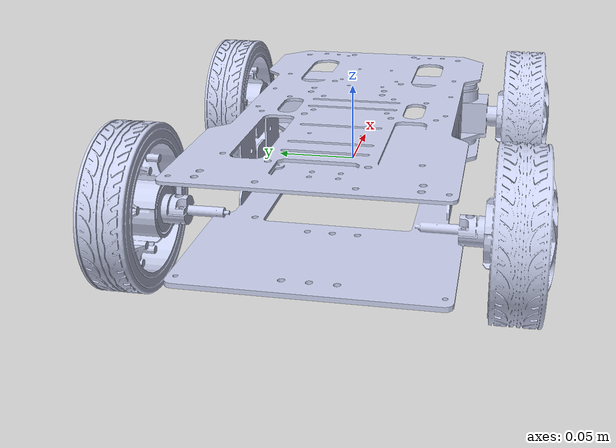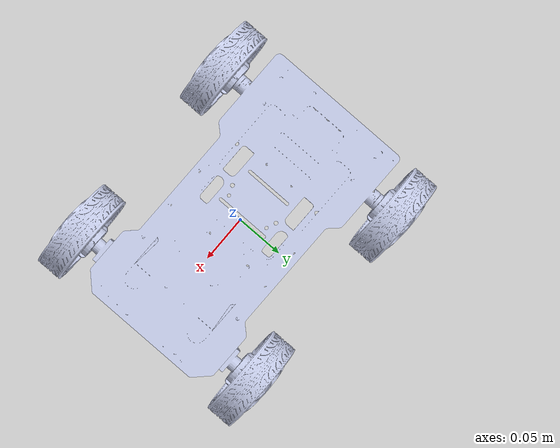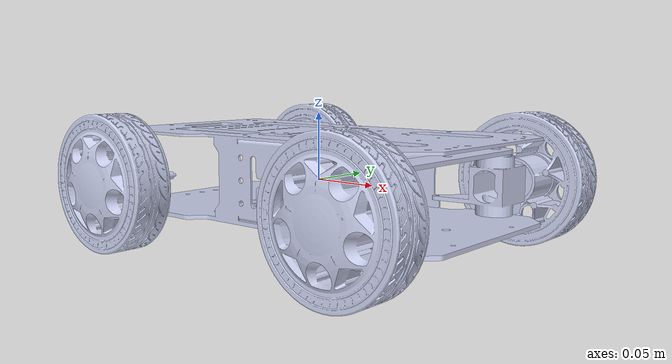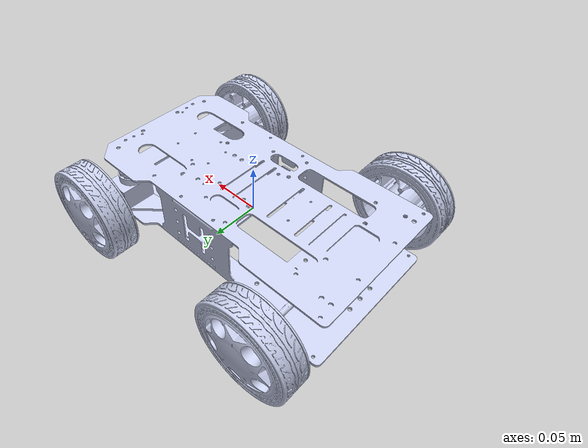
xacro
<?xml version="1.0" encoding="utf-8"?>
<robot xmlns:xacro="http://www.ros.org/wiki/xacro" name="acamana">

  <!-- Define some constants -->
  <xacro:property name="PI" value="3.1415926535897931"/>

  <!-- Include Gazebo reference plugin -->
  <xacro:include filename="$(find acamana)/urdf/acamana.gazebo"/>

  <!-- Base Link -->
  <link name="base_link">
    <inertial>
      <origin xyz="-0.000410773784337879 -4.50102945727632E-06 0.000188079948723217" rpy="0 0 0" />
      <mass value="0.224252192432071" />
      <inertia
        ixx="0.000384367775648917"
        ixy="3.76312515381557E-08"
        ixz="-3.24905280224815E-09"
        iyy="0.00152650491504501"
        iyz="7.02452171299624E-11"
        izz="0.00189778395864725" />
    </inertial>
    <visual>
      <origin xyz="0 0 0" rpy="0 0 0" />
      <geometry>
        <mesh filename="package://acamana/meshes/base_link.STL" />
      </geometry>
      <material name="light_blue">
        <color rgba="0.792156862745098 0.819607843137255 0.933333333333333 1" />
      </material>
    </visual>
    <collision>
      <origin xyz="0 0 0" rpy="0 0 0" />
      <geometry>
        <mesh filename="package://acamana/meshes/base_link.STL" />
      </geometry>
    </collision>
  </link>

  <!-- Left Steering Hinge -->
  <link name="left_steering_hinge">
    <inertial>
      <origin xyz="-0.00214055518577709 0.0114938412169271 -0.00101430442705201" rpy="0 0 0" />
      <mass value="0.019320077665136" />
      <inertia
        ixx="3.65091233921692E-06"
        ixy="-3.8359376652168E-07"
        ixz="-4.31566026293577E-07"
        iyy="4.40274174328948E-06"
        iyz="-1.57348260942121E-07"
        izz="4.35327403175562E-06" />
    </inertial>
    <visual>
      <origin xyz="0 0 0" rpy="0 0 0" />
      <geometry>
        <mesh filename="package://acamana/meshes/left_steering_hinge.STL" />
      </geometry>
      <material name="light_blue" />
    </visual>
    <collision>
      <origin xyz="0 0 0" rpy="0 0 0" />
      <geometry>
        <mesh filename="package://acamana/meshes/left_steering_hinge.STL" />
      </geometry>
    </collision>
  </link>

  <joint name="left_steering_hinge_joint" type="revolute">
    <origin xyz="0.11123 0.063711 -0.00033469" rpy="0 0 0" />
    <parent link="base_link" />
    <child link="left_steering_hinge" />
    <axis xyz="0 0 1" />
    <limit lower="-0.785" upper="0.785" effort="1999.9" velocity="348.9" />
  </joint>

  <!-- Left Front Wheel -->
  <link name="left_front_wheel">
    <inertial>
      <origin xyz="2.69864139146314E-07 0.000974501012028089 7.43504567637335E-08" rpy="0 0 0" />
      <mass value="0.124188351717402" />
      <inertia
        ixx="0.000108426219461981"
        ixy="6.16641829591181E-10"
        ixz="6.14953076918742E-09"
        iyy="0.000198988759881268"
        iyz="-1.79345986661271E-11"
        izz="0.000108425295656723" />
    </inertial>
    <visual>
      <origin xyz="0 0 0" rpy="0 0 0" />
      <geometry>
        <mesh filename="package://acamana/meshes/left_front_wheel.STL" />
      </geometry>
      <material name="light_blue" />
    </visual>
    <collision>
      <origin xyz="0 0 0" rpy="0 0 0" />
      <geometry>
        <mesh filename="package://acamana/meshes/left_front_wheel.STL" />
      </geometry>
    </collision>
  </link>

  <joint name="left_front_wheel_joint" type="continuous">
    <origin xyz="0 0.047063 0" rpy="0 0 0" />
    <parent link="left_steering_hinge" />
    <child link="left_front_wheel" />
    <axis xyz="0 -1 0" />
    <limit effort="259.9" velocity="529.9" />
    <dynamics damping="0.1" friction="0.1"/>
  </joint>

  <!-- Right Steering Hinge -->
  <link name="right_steering_hinge">
    <inertial>
      <origin xyz="-0.00214065668285346 -0.0114939743395863 -0.00101615028127726" rpy="0 0 0" />
      <mass value="0.0193185139789688" />
      <inertia
        ixx="3.6507224134391E-06"
        ixy="3.83677614862953E-07"
        ixz="-4.31474916495668E-07"
        iyy="4.40170253054901E-06"
        iyz="1.57666090581151E-07"
        izz="4.3530528940828E-06" />
    </inertial>
    <visual>
      <origin xyz="0 0 0" rpy="0 0 0" />
      <geometry>
        <mesh filename="package://acamana/meshes/right_steering_hinge.STL" />
      </geometry>
      <material name="light_blue" />
    </visual>
    <collision>
      <origin xyz="0 0 0" rpy="0 0 0" />
      <geometry>
        <mesh filename="package://acamana/meshes/right_steering_hinge.STL" />
      </geometry>
    </collision>
  </link>

  <joint name="right_steering_hinge_joint" type="revolute">
    <origin xyz="0.11123 -0.063711 -0.00033469" rpy="0 0 0" />
    <parent link="base_link" />
    <child link="right_steering_hinge" />
    <axis xyz="0 0 1" />
    <limit lower="-0.785" upper="0.785" effort="1999.9" velocity="348.9" />
  </joint>

  <!-- Right Front Wheel -->
  <link name="right_front_wheel">
    <inertial>
      <origin xyz="-1.550417727883E-06 -0.000974395825432128 2.48294778512344E-06" rpy="0 0 0" />
      <mass value="0.124186468008551" />
      <inertia
        ixx="0.0001084386658304"
        ixy="8.2849214966896E-10"
        ixz="2.08769584709537E-08"
        iyy="0.000199003281991997"
        iyz="1.53854417197541E-09"
        izz="0.00010842819433505" />
    </inertial>
    <visual>
      <origin xyz="0 0 0" rpy="0 0 0" />
      <geometry>
        <mesh filename="package://acamana/meshes/right_front_wheel.STL" />
      </geometry>
      <material name="light_blue" />
    </visual>
    <collision>
      <origin xyz="0 0 0" rpy="0 0 0" />
      <geometry>
        <mesh filename="package://acamana/meshes/right_front_wheel.STL" />
      </geometry>
    </collision>
  </link>

  <joint name="right_front_wheel_joint" type="continuous">
    <origin xyz="0 -0.047063 0" rpy="0 0 0" />
    <parent link="right_steering_hinge" />
    <child link="right_front_wheel" />
    <axis xyz="0 -1 0" />
    <limit effort="259.9" velocity="529.9" />
    <dynamics damping="0.1" friction="0.1"/>
  </joint>

  <!-- Left Rear Wheel -->
  <link name="left_rear_wheel">
    <inertial>
      <origin xyz="1.48678928679757E-06 0.000974279188147756 -2.39603507424775E-06" rpy="0 0 0" />
      <mass value="0.124185768823433" />
      <inertia
        ixx="0.000108447186828646"
        ixy="9.3356109022442E-10"
        ixz="-7.51084978124662E-09"
        iyy="0.000198999670249457"
        iyz="2.67909684507298E-10"
        izz="0.000108415507605727" />
    </inertial>
    <visual>
      <origin xyz="0 0 0" rpy="0 0 0" />
      <geometry>
        <mesh filename="package://acamana/meshes/left_rear_wheel.STL" />
      </geometry>
      <material name="light_blue" />
    </visual>
    <collision>
      <origin xyz="0 0 0" rpy="0 0 0" />
      <geometry>
        <mesh filename="package://acamana/meshes/left_rear_wheel.STL" />
      </geometry>
    </collision>
  </link>

  <joint name="left_rear_wheel_joint" type="continuous">
    <origin xyz="-0.1021 0.11077 0" rpy="0 0 0" />
    <parent link="base_link" />
    <child link="left_rear_wheel" />
    <axis xyz="0 -1 0" />
    <limit effort="259.9" velocity="529.9" />
    <dynamics damping="0.1" friction="0.1"/>
  </joint>

  <!-- Right Rear Wheel -->
  <link name="right_rear_wheel">
    <inertial>
      <origin xyz="1.49354641822141E-06 -0.000974859994966409 -2.34500844404229E-06" rpy="0 0 0" />
      <mass value="0.12418629538773" />
      <inertia
        ixx="0.000108447659615878"
        ixy="8.73156228173837E-10"
        ixz="-8.57721842762821E-09"
        iyy="0.000199000738710147"
        iyz="3.07367743094142E-10"
        izz="0.000108416160865518" />
    </inertial>
    <visual>
      <origin xyz="0 0 0" rpy="0 0 0" />
      <geometry>
        <mesh filename="package://acamana/meshes/right_rear_wheel.STL" />
      </geometry>
      <material name="light_blue" />
    </visual>
    <collision>
      <origin xyz="0 0 0" rpy="0 0 0" />
      <geometry>
        <mesh filename="package://acamana/meshes/right_rear_wheel.STL" />
      </geometry>
    </collision>
  </link>

  <joint name="right_rear_wheel_joint" type="continuous">
    <origin xyz="-0.1021 -0.11077 0" rpy="0 0 0" />
    <parent link="base_link" />
    <child link="right_rear_wheel" />
    <axis xyz="0 -1 0" />
    <limit effort="259.9" velocity="529.9" />
    <dynamics damping="0.1" friction="0.1"/>
  </joint>

</robot>
